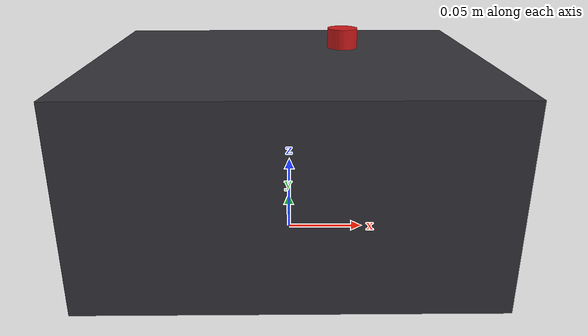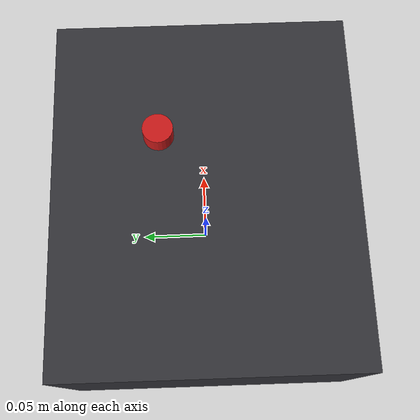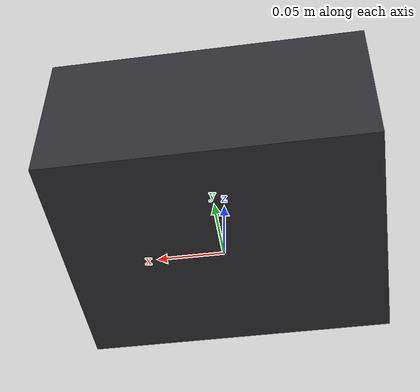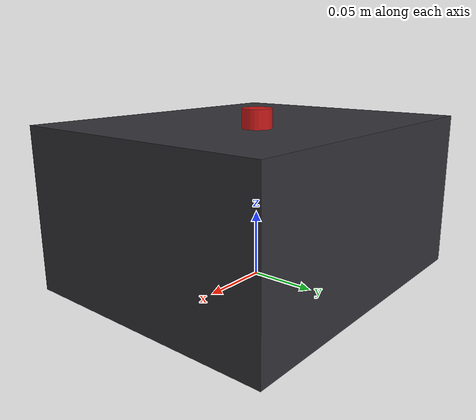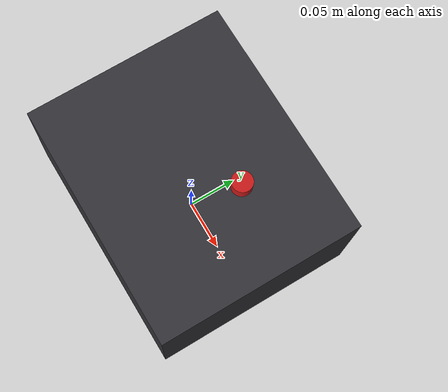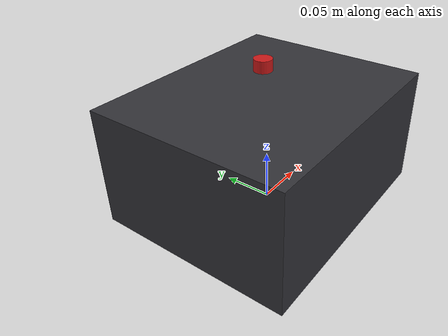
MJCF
<?xml version="1.0" encoding="utf-8"?>
<mujoco model="uv_vis_spectrophotometer">
  <compiler angle="radian" autolimits="true"/>
  <default>
    <default class="body"><geom contype="1" conaffinity="1"/></default>
  </default>
  <worldbody>
    <body name="base">
      <geom type="box" size="0.12 0.1 0.06" pos="0 0 0.06" rgba="0.2 0.2 0.22 1" class="body"/>
      <geom type="box" size="0.036 0.005000000000000001 0.015" pos="-0.06 -0.09000000000000001 0.09" rgba="0.6 0.9 0.9 0.7" class="body"/>
      <body name="knob" pos="0.036 0.03 0.125">
        <joint name="knob_joint" type="hinge" axis="0 0 1" range="-3.14159 3.14159" damping="0.3" frictionloss="0.1"/>
  <geom type="cylinder" size="0.01 0.008" pos="0 0 0" rgba="0.8 0.1 0.1 1" class="body"/>
      </body>
    </body>
  </worldbody>
</mujoco>
